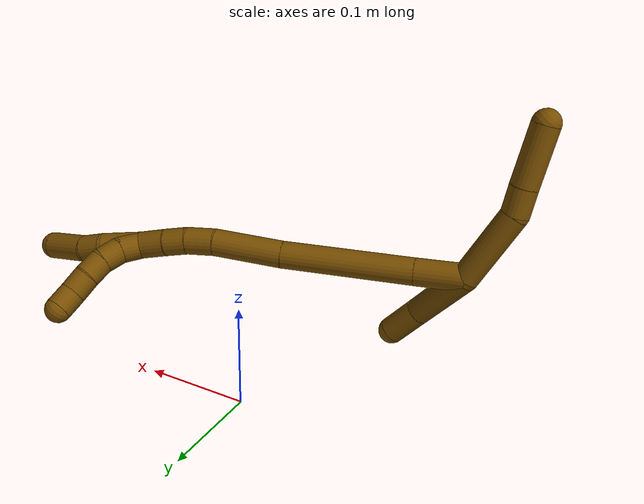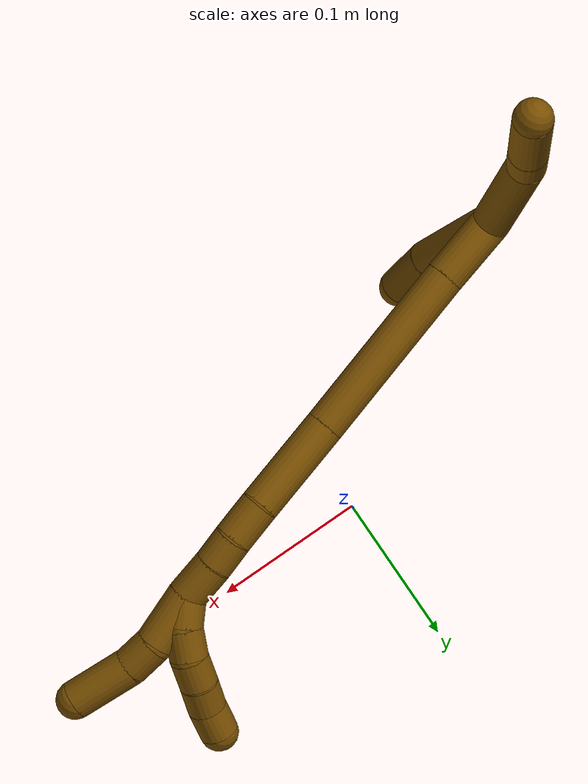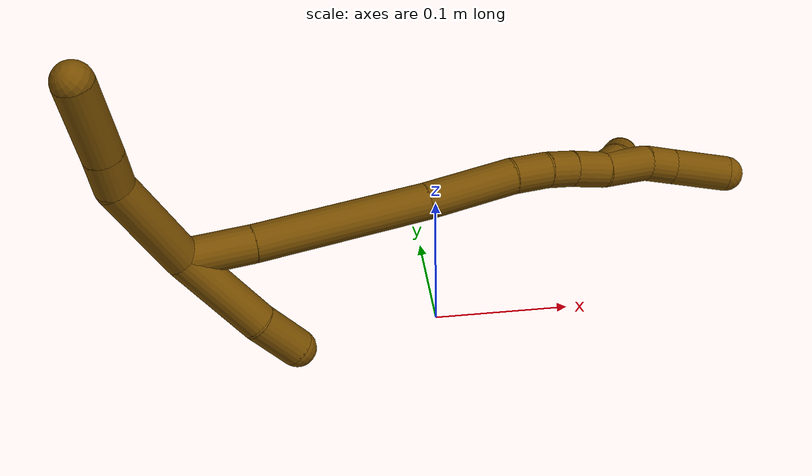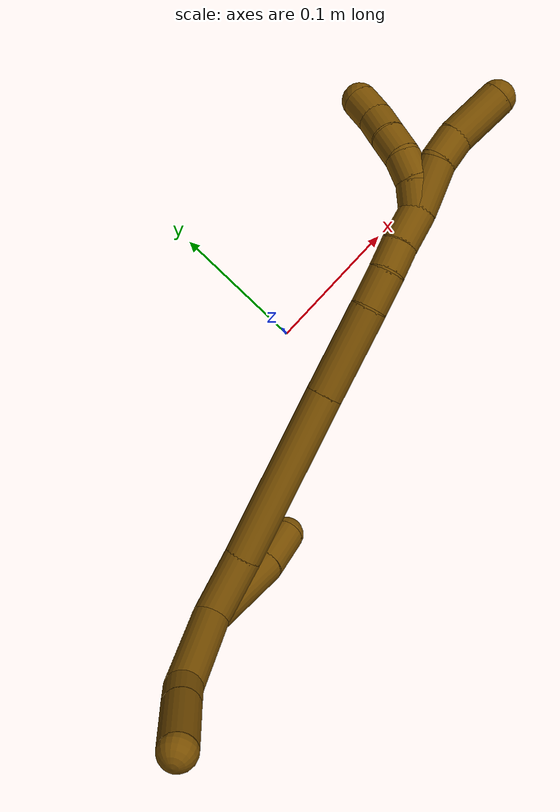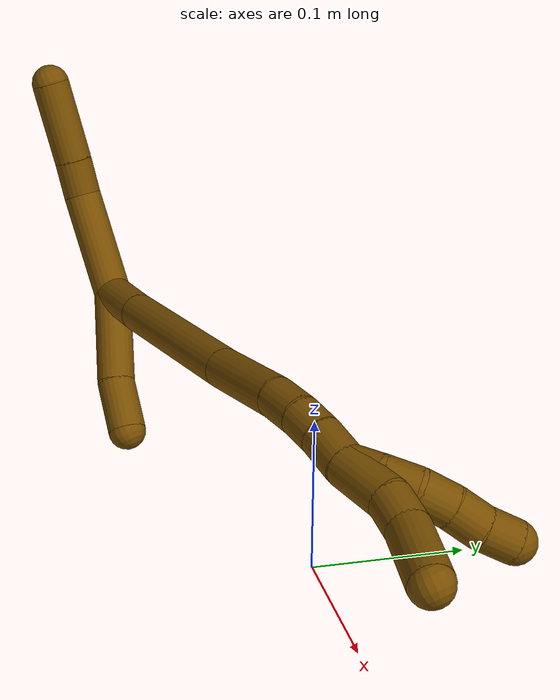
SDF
<sdf version="1.7">
 <world name="default">
  <model name="12">
   <static>0</static>
   <link name="12">
    <collision name="collision-cylinder-e_1_2_8">
     <pose>0.004573 0.002542 0.035134 -0.072219 0.129101 -0.00467</pose>
     <geometry><cylinder><radius>0.0125</radius><length>0.071043</length></cylinder></geometry>
     <surface>
      <friction><ode><mu>1.16</mu><mu2>1.16</mu2><slip1>0</slip1><slip2>0</slip2></ode></friction>
      <contact><ode><kp>1e+06</kp><kd>1</kd><max_vel>0</max_vel><min_depth>0.001</min_depth></ode></contact>
     </surface>
    </collision>
    <visual name="visual-cylinder-e_1_2_8">
     <pose>0.004573 0.002542 0.035134 -0.072219 0.129101 -0.00467</pose>
     <geometry><cylinder><radius>0.0125</radius><length>0.071043</length></cylinder></geometry>
     <material><ambient>0.466667 0.301961 0 1</ambient></material>
    </visual>
    <collision name="collision-cylinder-e_2_8_9">
     <pose>0.014802 0.005196 0.08144 -0.010023 0.468576 -0.002392</pose>
     <geometry><cylinder><radius>0.0125</radius><length>0.025045</length></cylinder></geometry>
     <surface>
      <friction><ode><mu>1.16</mu><mu2>1.16</mu2><slip1>0</slip1><slip2>0</slip2></ode></friction>
      <contact><ode><kp>1e+06</kp><kd>1</kd><max_vel>0</max_vel><min_depth>0.001</min_depth></ode></contact>
     </surface>
    </collision>
    <visual name="visual-cylinder-e_2_8_9">
     <pose>0.014802 0.005196 0.08144 -0.010023 0.468576 -0.002392</pose>
     <geometry><cylinder><radius>0.0125</radius><length>0.025045</length></cylinder></geometry>
     <material><ambient>0.466667 0.301961 0 1</ambient></material>
    </visual>
    <collision name="collision-cylinder-e_3_9_6">
     <pose>0.032022 0.004956 0.116959 0.014458 0.443431 0.003259</pose>
     <geometry><cylinder><radius>0.0125</radius><length>0.053912</length></cylinder></geometry>
     <surface>
      <friction><ode><mu>1.16</mu><mu2>1.16</mu2><slip1>0</slip1><slip2>0</slip2></ode></friction>
      <contact><ode><kp>1e+06</kp><kd>1</kd><max_vel>0</max_vel><min_depth>0.001</min_depth></ode></contact>
     </surface>
    </collision>
    <visual name="visual-cylinder-e_3_9_6">
     <pose>0.032022 0.004956 0.116959 0.014458 0.443431 0.003259</pose>
     <geometry><cylinder><radius>0.0125</radius><length>0.053912</length></cylinder></geometry>
     <material><ambient>0.466667 0.301961 0 1</ambient></material>
    </visual>
    <collision name="collision-cylinder-e_1_2_10">
     <pose>0.0022 -0.012146 -0.030179 2.75895 0.067535 0.345338</pose>
     <geometry><cylinder><radius>0.0125</radius><length>0.065212</length></cylinder></geometry>
     <surface>
      <friction><ode><mu>1.16</mu><mu2>1.16</mu2><slip1>0</slip1><slip2>0</slip2></ode></friction>
      <contact><ode><kp>1e+06</kp><kd>1</kd><max_vel>0</max_vel><min_depth>0.001</min_depth></ode></contact>
     </surface>
    </collision>
    <visual name="visual-cylinder-e_1_2_10">
     <pose>0.0022 -0.012146 -0.030179 2.75895 0.067535 0.345338</pose>
     <geometry><cylinder><radius>0.0125</radius><length>0.065212</length></cylinder></geometry>
     <material><ambient>0.466667 0.301961 0 1</ambient></material>
    </visual>
    <collision name="collision-cylinder-e_2_10_5">
     <pose>0.006265 -0.027952 -0.077261 2.9284 0.107372 0.930834</pose>
     <geometry><cylinder><radius>0.0125</radius><length>0.034788</length></cylinder></geometry>
     <surface>
      <friction><ode><mu>1.16</mu><mu2>1.16</mu2><slip1>0</slip1><slip2>0</slip2></ode></friction>
      <contact><ode><kp>1e+06</kp><kd>1</kd><max_vel>0</max_vel><min_depth>0.001</min_depth></ode></contact>
     </surface>
    </collision>
    <visual name="visual-cylinder-e_2_10_5">
     <pose>0.006265 -0.027952 -0.077261 2.9284 0.107372 0.930834</pose>
     <geometry><cylinder><radius>0.0125</radius><length>0.034788</length></cylinder></geometry>
     <material><ambient>0.466667 0.301961 0 1</ambient></material>
    </visual>
    <collision name="collision-cylinder-e_1_2_11">
     <pose>0.017527 -8.4e-05 -0.013433 3.13536 0.916865 3.12896</pose>
     <geometry><cylinder><radius>0.0125</radius><length>0.044165</length></cylinder></geometry>
     <surface>
      <friction><ode><mu>1.16</mu><mu2>1.16</mu2><slip1>0</slip1><slip2>0</slip2></ode></friction>
      <contact><ode><kp>1e+06</kp><kd>1</kd><max_vel>0</max_vel><min_depth>0.001</min_depth></ode></contact>
     </surface>
    </collision>
    <visual name="visual-cylinder-e_1_2_11">
     <pose>0.017527 -8.4e-05 -0.013433 3.13536 0.916865 3.12896</pose>
     <geometry><cylinder><radius>0.0125</radius><length>0.044165</length></cylinder></geometry>
     <material><ambient>0.466667 0.301961 0 1</ambient></material>
    </visual>
    <collision name="collision-cylinder-e_2_11_12">
     <pose>0.083003 0.001375 -0.061975 -3.0977 0.938308 -3.05505</pose>
     <geometry><cylinder><radius>0.0125</radius><length>0.1189</length></cylinder></geometry>
     <surface>
      <friction><ode><mu>1.16</mu><mu2>1.16</mu2><slip1>0</slip1><slip2>0</slip2></ode></friction>
      <contact><ode><kp>1e+06</kp><kd>1</kd><max_vel>0</max_vel><min_depth>0.001</min_depth></ode></contact>
     </surface>
    </collision>
    <visual name="visual-cylinder-e_2_11_12">
     <pose>0.083003 0.001375 -0.061975 -3.0977 0.938308 -3.05505</pose>
     <geometry><cylinder><radius>0.0125</radius><length>0.1189</length></cylinder></geometry>
     <material><ambient>0.466667 0.301961 0 1</ambient></material>
    </visual>
    <collision name="collision-cylinder-e_3_12_13">
     <pose>0.157521 0.003796 -0.114364 -3.09075 0.993588 -3.04785</pose>
     <geometry><cylinder><radius>0.0125</radius><length>0.063408</length></cylinder></geometry>
     <surface>
      <friction><ode><mu>1.16</mu><mu2>1.16</mu2><slip1>0</slip1><slip2>0</slip2></ode></friction>
      <contact><ode><kp>1e+06</kp><kd>1</kd><max_vel>0</max_vel><min_depth>0.001</min_depth></ode></contact>
     </surface>
    </collision>
    <visual name="visual-cylinder-e_3_12_13">
     <pose>0.157521 0.003796 -0.114364 -3.09075 0.993588 -3.04785</pose>
     <geometry><cylinder><radius>0.0125</radius><length>0.063408</length></cylinder></geometry>
     <material><ambient>0.466667 0.301961 0 1</ambient></material>
    </visual>
    <collision name="collision-cylinder-e_4_13_14">
     <pose>0.194107 0.004913 -0.140151 -3.11361 0.86649 -3.0811</pose>
     <geometry><cylinder><radius>0.0125</radius><length>0.026294</length></cylinder></geometry>
     <surface>
      <friction><ode><mu>1.16</mu><mu2>1.16</mu2><slip1>0</slip1><slip2>0</slip2></ode></friction>
      <contact><ode><kp>1e+06</kp><kd>1</kd><max_vel>0</max_vel><min_depth>0.001</min_depth></ode></contact>
     </surface>
    </collision>
    <visual name="visual-cylinder-e_4_13_14">
     <pose>0.194107 0.004913 -0.140151 -3.11361 0.86649 -3.0811</pose>
     <geometry><cylinder><radius>0.0125</radius><length>0.026294</length></cylinder></geometry>
     <material><ambient>0.466667 0.301961 0 1</ambient></material>
    </visual>
    <collision name="collision-cylinder-e_5_14_15">
     <pose>0.211042 0.005372 -0.156452 -3.11329 0.725827 -3.0671</pose>
     <geometry><cylinder><radius>0.0125</radius><length>0.020842</length></cylinder></geometry>
     <surface>
      <friction><ode><mu>1.16</mu><mu2>1.16</mu2><slip1>0</slip1><slip2>0</slip2></ode></friction>
      <contact><ode><kp>1e+06</kp><kd>1</kd><max_vel>0</max_vel><min_depth>0.001</min_depth></ode></contact>
     </surface>
    </collision>
    <visual name="visual-cylinder-e_5_14_15">
     <pose>0.211042 0.005372 -0.156452 -3.11329 0.725827 -3.0671</pose>
     <geometry><cylinder><radius>0.0125</radius><length>0.020842</length></cylinder></geometry>
     <material><ambient>0.466667 0.301961 0 1</ambient></material>
    </visual>
    <collision name="collision-cylinder-e_6_15_1">
     <pose>0.226338 0.004924 -0.174415 3.07601 0.687966 2.95896</pose>
     <geometry><cylinder><radius>0.0125</radius><length>0.026392</length></cylinder></geometry>
     <surface>
      <friction><ode><mu>1.16</mu><mu2>1.16</mu2><slip1>0</slip1><slip2>0</slip2></ode></friction>
      <contact><ode><kp>1e+06</kp><kd>1</kd><max_vel>0</max_vel><min_depth>0.001</min_depth></ode></contact>
     </surface>
    </collision>
    <visual name="visual-cylinder-e_6_15_1">
     <pose>0.226338 0.004924 -0.174415 3.07601 0.687966 2.95896</pose>
     <geometry><cylinder><radius>0.0125</radius><length>0.026392</length></cylinder></geometry>
     <material><ambient>0.466667 0.301961 0 1</ambient></material>
    </visual>
    <collision name="collision-cylinder-e_1_1_16">
     <pose>0.247638 0.005743 -0.197408 -3.02615 0.785973 -2.86459</pose>
     <geometry><cylinder><radius>0.0125</radius><length>0.036524</length></cylinder></geometry>
     <surface>
      <friction><ode><mu>1.16</mu><mu2>1.16</mu2><slip1>0</slip1><slip2>0</slip2></ode></friction>
      <contact><ode><kp>1e+06</kp><kd>1</kd><max_vel>0</max_vel><min_depth>0.001</min_depth></ode></contact>
     </surface>
    </collision>
    <visual name="visual-cylinder-e_1_1_16">
     <pose>0.247638 0.005743 -0.197408 -3.02615 0.785973 -2.86459</pose>
     <geometry><cylinder><radius>0.0125</radius><length>0.036524</length></cylinder></geometry>
     <material><ambient>0.466667 0.301961 0 1</ambient></material>
    </visual>
    <collision name="collision-cylinder-e_2_16_17">
     <pose>0.267216 0.005496 -0.21879 2.94186 0.651145 2.56454</pose>
     <geometry><cylinder><radius>0.0125</radius><length>0.021968</length></cylinder></geometry>
     <surface>
      <friction><ode><mu>1.16</mu><mu2>1.16</mu2><slip1>0</slip1><slip2>0</slip2></ode></friction>
      <contact><ode><kp>1e+06</kp><kd>1</kd><max_vel>0</max_vel><min_depth>0.001</min_depth></ode></contact>
     </surface>
    </collision>
    <visual name="visual-cylinder-e_2_16_17">
     <pose>0.267216 0.005496 -0.21879 2.94186 0.651145 2.56454</pose>
     <geometry><cylinder><radius>0.0125</radius><length>0.021968</length></cylinder></geometry>
     <material><ambient>0.466667 0.301961 0 1</ambient></material>
    </visual>
    <collision name="collision-cylinder-e_3_17_4">
     <pose>0.287717 -0.003086 -0.241216 2.68273 0.730223 2.0447</pose>
     <geometry><cylinder><radius>0.0125</radius><length>0.041509</length></cylinder></geometry>
     <surface>
      <friction><ode><mu>1.16</mu><mu2>1.16</mu2><slip1>0</slip1><slip2>0</slip2></ode></friction>
      <contact><ode><kp>1e+06</kp><kd>1</kd><max_vel>0</max_vel><min_depth>0.001</min_depth></ode></contact>
     </surface>
    </collision>
    <visual name="visual-cylinder-e_3_17_4">
     <pose>0.287717 -0.003086 -0.241216 2.68273 0.730223 2.0447</pose>
     <geometry><cylinder><radius>0.0125</radius><length>0.041509</length></cylinder></geometry>
     <material><ambient>0.466667 0.301961 0 1</ambient></material>
    </visual>
    <collision name="collision-cylinder-e_1_1_18">
     <pose>0.240185 0.009542 -0.191082 -2.45839 0.578418 -1.39369</pose>
     <geometry><cylinder><radius>0.0125</radius><length>0.02</length></cylinder></geometry>
     <surface>
      <friction><ode><mu>1.16</mu><mu2>1.16</mu2><slip1>0</slip1><slip2>0</slip2></ode></friction>
      <contact><ode><kp>1e+06</kp><kd>1</kd><max_vel>0</max_vel><min_depth>0.001</min_depth></ode></contact>
     </surface>
    </collision>
    <visual name="visual-cylinder-e_1_1_18">
     <pose>0.240185 0.009542 -0.191082 -2.45839 0.578418 -1.39369</pose>
     <geometry><cylinder><radius>0.0125</radius><length>0.02</length></cylinder></geometry>
     <material><ambient>0.466667 0.301961 0 1</ambient></material>
    </visual>
    <collision name="collision-cylinder-e_2_18_19">
     <pose>0.248184 0.021648 -0.204437 -2.35915 0.256062 -0.605036</pose>
     <geometry><cylinder><radius>0.0125</radius><length>0.02</length></cylinder></geometry>
     <surface>
      <friction><ode><mu>1.16</mu><mu2>1.16</mu2><slip1>0</slip1><slip2>0</slip2></ode></friction>
      <contact><ode><kp>1e+06</kp><kd>1</kd><max_vel>0</max_vel><min_depth>0.001</min_depth></ode></contact>
     </surface>
    </collision>
    <visual name="visual-cylinder-e_2_18_19">
     <pose>0.248184 0.021648 -0.204437 -2.35915 0.256062 -0.605036</pose>
     <geometry><cylinder><radius>0.0125</radius><length>0.02</length></cylinder></geometry>
     <material><ambient>0.466667 0.301961 0 1</ambient></material>
    </visual>
    <collision name="collision-cylinder-e_3_19_20">
     <pose>0.250765 0.035149 -0.218738 -2.41002 0.004808 -0.012552</pose>
     <geometry><cylinder><radius>0.0125</radius><length>0.02</length></cylinder></geometry>
     <surface>
      <friction><ode><mu>1.16</mu><mu2>1.16</mu2><slip1>0</slip1><slip2>0</slip2></ode></friction>
      <contact><ode><kp>1e+06</kp><kd>1</kd><max_vel>0</max_vel><min_depth>0.001</min_depth></ode></contact>
     </surface>
    </collision>
    <visual name="visual-cylinder-e_3_19_20">
     <pose>0.250765 0.035149 -0.218738 -2.41002 0.004808 -0.012552</pose>
     <geometry><cylinder><radius>0.0125</radius><length>0.02</length></cylinder></geometry>
     <material><ambient>0.466667 0.301961 0 1</ambient></material>
    </visual>
    <collision name="collision-cylinder-e_4_20_21">
     <pose>0.250243 0.047647 -0.234293 -2.51954 -0.057036 0.177014</pose>
     <geometry><cylinder><radius>0.0125</radius><length>0.02</length></cylinder></geometry>
     <surface>
      <friction><ode><mu>1.16</mu><mu2>1.16</mu2><slip1>0</slip1><slip2>0</slip2></ode></friction>
      <contact><ode><kp>1e+06</kp><kd>1</kd><max_vel>0</max_vel><min_depth>0.001</min_depth></ode></contact>
     </surface>
    </collision>
    <visual name="visual-cylinder-e_4_20_21">
     <pose>0.250243 0.047647 -0.234293 -2.51954 -0.057036 0.177014</pose>
     <geometry><cylinder><radius>0.0125</radius><length>0.02</length></cylinder></geometry>
     <material><ambient>0.466667 0.301961 0 1</ambient></material>
    </visual>
    <collision name="collision-cylinder-e_5_21_3">
     <pose>0.249182 0.060656 -0.249338 -2.33771 -0.049136 0.115487</pose>
     <geometry><cylinder><radius>0.0125</radius><length>0.02</length></cylinder></geometry>
     <surface>
      <friction><ode><mu>1.16</mu><mu2>1.16</mu2><slip1>0</slip1><slip2>0</slip2></ode></friction>
      <contact><ode><kp>1e+06</kp><kd>1</kd><max_vel>0</max_vel><min_depth>0.001</min_depth></ode></contact>
     </surface>
    </collision>
    <visual name="visual-cylinder-e_5_21_3">
     <pose>0.249182 0.060656 -0.249338 -2.33771 -0.049136 0.115487</pose>
     <geometry><cylinder><radius>0.0125</radius><length>0.02</length></cylinder></geometry>
     <material><ambient>0.466667 0.301961 0 1</ambient></material>
    </visual>
    <collision name="collision-sphere-3">
     <pose>0.248691 0.067848 -0.256269 0 -0 0</pose>
     <geometry><sphere><radius>0.0125</radius></sphere></geometry>
     <surface>
      <friction><ode><mu>1.16</mu><mu2>1.16</mu2><slip1>0</slip1><slip2>0</slip2></ode></friction>
      <contact><ode><kp>1e+06</kp><kd>1</kd><max_vel>0</max_vel><min_depth>0.001</min_depth></ode></contact>
     </surface>
    </collision>
    <visual name="visual-sphere-3">
     <pose>0.248691 0.067848 -0.256269 0 -0 0</pose>
     <geometry><sphere><radius>0.0125</radius></sphere></geometry>
     <material><ambient>0.466667 0.301961 0 1</ambient></material>
    </visual>
    <collision name="collision-sphere-21">
     <pose>0.249673 0.053464 -0.242407 0 -0 0</pose>
     <geometry><sphere><radius>0.0125</radius></sphere></geometry>
     <surface>
      <friction><ode><mu>1.16</mu><mu2>1.16</mu2><slip1>0</slip1><slip2>0</slip2></ode></friction>
      <contact><ode><kp>1e+06</kp><kd>1</kd><max_vel>0</max_vel><min_depth>0.001</min_depth></ode></contact>
     </surface>
    </collision>
    <visual name="visual-sphere-21">
     <pose>0.249673 0.053464 -0.242407 0 -0 0</pose>
     <geometry><sphere><radius>0.0125</radius></sphere></geometry>
     <material><ambient>0.466667 0.301961 0 1</ambient></material>
    </visual>
    <collision name="collision-sphere-20">
     <pose>0.250813 0.041829 -0.22618 0 -0 0</pose>
     <geometry><sphere><radius>0.0125</radius></sphere></geometry>
     <surface>
      <friction><ode><mu>1.16</mu><mu2>1.16</mu2><slip1>0</slip1><slip2>0</slip2></ode></friction>
      <contact><ode><kp>1e+06</kp><kd>1</kd><max_vel>0</max_vel><min_depth>0.001</min_depth></ode></contact>
     </surface>
    </collision>
    <visual name="visual-sphere-20">
     <pose>0.250813 0.041829 -0.22618 0 -0 0</pose>
     <geometry><sphere><radius>0.0125</radius></sphere></geometry>
     <material><ambient>0.466667 0.301961 0 1</ambient></material>
    </visual>
    <collision name="collision-sphere-19">
     <pose>0.250717 0.028469 -0.211297 0 -0 0</pose>
     <geometry><sphere><radius>0.0125</radius></sphere></geometry>
     <surface>
      <friction><ode><mu>1.16</mu><mu2>1.16</mu2><slip1>0</slip1><slip2>0</slip2></ode></friction>
      <contact><ode><kp>1e+06</kp><kd>1</kd><max_vel>0</max_vel><min_depth>0.001</min_depth></ode></contact>
     </surface>
    </collision>
    <visual name="visual-sphere-19">
     <pose>0.250717 0.028469 -0.211297 0 -0 0</pose>
     <geometry><sphere><radius>0.0125</radius></sphere></geometry>
     <material><ambient>0.466667 0.301961 0 1</ambient></material>
    </visual>
    <collision name="collision-sphere-5">
     <pose>0.008129 -0.031611 -0.094163 0 -0 0</pose>
     <geometry><sphere><radius>0.0125</radius></sphere></geometry>
     <surface>
      <friction><ode><mu>1.16</mu><mu2>1.16</mu2><slip1>0</slip1><slip2>0</slip2></ode></friction>
      <contact><ode><kp>1e+06</kp><kd>1</kd><max_vel>0</max_vel><min_depth>0.001</min_depth></ode></contact>
     </surface>
    </collision>
    <visual name="visual-sphere-5">
     <pose>0.008129 -0.031611 -0.094163 0 -0 0</pose>
     <geometry><sphere><radius>0.0125</radius></sphere></geometry>
     <material><ambient>0.466667 0.301961 0 1</ambient></material>
    </visual>
    <collision name="collision-sphere-10">
     <pose>0.004401 -0.024293 -0.060358 0 -0 0</pose>
     <geometry><sphere><radius>0.0125</radius></sphere></geometry>
     <surface>
      <friction><ode><mu>1.16</mu><mu2>1.16</mu2><slip1>0</slip1><slip2>0</slip2></ode></friction>
      <contact><ode><kp>1e+06</kp><kd>1</kd><max_vel>0</max_vel><min_depth>0.001</min_depth></ode></contact>
     </surface>
    </collision>
    <visual name="visual-sphere-10">
     <pose>0.004401 -0.024293 -0.060358 0 -0 0</pose>
     <geometry><sphere><radius>0.0125</radius></sphere></geometry>
     <material><ambient>0.466667 0.301961 0 1</ambient></material>
    </visual>
    <collision name="collision-sphere-6">
     <pose>0.043587 0.004603 0.141305 0 -0 0</pose>
     <geometry><sphere><radius>0.0125</radius></sphere></geometry>
     <surface>
      <friction><ode><mu>1.16</mu><mu2>1.16</mu2><slip1>0</slip1><slip2>0</slip2></ode></friction>
      <contact><ode><kp>1e+06</kp><kd>1</kd><max_vel>0</max_vel><min_depth>0.001</min_depth></ode></contact>
     </surface>
    </collision>
    <visual name="visual-sphere-6">
     <pose>0.043587 0.004603 0.141305 0 -0 0</pose>
     <geometry><sphere><radius>0.0125</radius></sphere></geometry>
     <material><ambient>0.466667 0.301961 0 1</ambient></material>
    </visual>
    <collision name="collision-sphere-9">
     <pose>0.020457 0.005308 0.092612 0 -0 0</pose>
     <geometry><sphere><radius>0.0125</radius></sphere></geometry>
     <surface>
      <friction><ode><mu>1.16</mu><mu2>1.16</mu2><slip1>0</slip1><slip2>0</slip2></ode></friction>
      <contact><ode><kp>1e+06</kp><kd>1</kd><max_vel>0</max_vel><min_depth>0.001</min_depth></ode></contact>
     </surface>
    </collision>
    <visual name="visual-sphere-9">
     <pose>0.020457 0.005308 0.092612 0 -0 0</pose>
     <geometry><sphere><radius>0.0125</radius></sphere></geometry>
     <material><ambient>0.466667 0.301961 0 1</ambient></material>
    </visual>
    <collision name="collision-sphere-2">
     <geometry><sphere><radius>0.0125</radius></sphere></geometry>
     <surface>
      <friction><ode><mu>1.16</mu><mu2>1.16</mu2><slip1>0</slip1><slip2>0</slip2></ode></friction>
      <contact><ode><kp>1e+06</kp><kd>1</kd><max_vel>0</max_vel><min_depth>0.001</min_depth></ode></contact>
     </surface>
    </collision>
    <visual name="visual-sphere-2">
     <geometry><sphere><radius>0.0125</radius></sphere></geometry>
     <material><ambient>0.466667 0.301961 0 1</ambient></material>
    </visual>
    <collision name="collision-sphere-8">
     <pose>0.009146 0.005084 0.070268 0 -0 0</pose>
     <geometry><sphere><radius>0.0125</radius></sphere></geometry>
     <surface>
      <friction><ode><mu>1.16</mu><mu2>1.16</mu2><slip1>0</slip1><slip2>0</slip2></ode></friction>
      <contact><ode><kp>1e+06</kp><kd>1</kd><max_vel>0</max_vel><min_depth>0.001</min_depth></ode></contact>
     </surface>
    </collision>
    <visual name="visual-sphere-8">
     <pose>0.009146 0.005084 0.070268 0 -0 0</pose>
     <geometry><sphere><radius>0.0125</radius></sphere></geometry>
     <material><ambient>0.466667 0.301961 0 1</ambient></material>
    </visual>
    <collision name="collision-sphere-11">
     <pose>0.035053 -0.000167 -0.026865 0 -0 0</pose>
     <geometry><sphere><radius>0.0125</radius></sphere></geometry>
     <surface>
      <friction><ode><mu>1.16</mu><mu2>1.16</mu2><slip1>0</slip1><slip2>0</slip2></ode></friction>
      <contact><ode><kp>1e+06</kp><kd>1</kd><max_vel>0</max_vel><min_depth>0.001</min_depth></ode></contact>
     </surface>
    </collision>
    <visual name="visual-sphere-11">
     <pose>0.035053 -0.000167 -0.026865 0 -0 0</pose>
     <geometry><sphere><radius>0.0125</radius></sphere></geometry>
     <material><ambient>0.466667 0.301961 0 1</ambient></material>
    </visual>
    <collision name="collision-sphere-12">
     <pose>0.130953 0.002917 -0.097086 0 -0 0</pose>
     <geometry><sphere><radius>0.0125</radius></sphere></geometry>
     <surface>
      <friction><ode><mu>1.16</mu><mu2>1.16</mu2><slip1>0</slip1><slip2>0</slip2></ode></friction>
      <contact><ode><kp>1e+06</kp><kd>1</kd><max_vel>0</max_vel><min_depth>0.001</min_depth></ode></contact>
     </surface>
    </collision>
    <visual name="visual-sphere-12">
     <pose>0.130953 0.002917 -0.097086 0 -0 0</pose>
     <geometry><sphere><radius>0.0125</radius></sphere></geometry>
     <material><ambient>0.466667 0.301961 0 1</ambient></material>
    </visual>
    <collision name="collision-sphere-13">
     <pose>0.184088 0.004675 -0.131642 0 -0 0</pose>
     <geometry><sphere><radius>0.0125</radius></sphere></geometry>
     <surface>
      <friction><ode><mu>1.16</mu><mu2>1.16</mu2><slip1>0</slip1><slip2>0</slip2></ode></friction>
      <contact><ode><kp>1e+06</kp><kd>1</kd><max_vel>0</max_vel><min_depth>0.001</min_depth></ode></contact>
     </surface>
    </collision>
    <visual name="visual-sphere-13">
     <pose>0.184088 0.004675 -0.131642 0 -0 0</pose>
     <geometry><sphere><radius>0.0125</radius></sphere></geometry>
     <material><ambient>0.466667 0.301961 0 1</ambient></material>
    </visual>
    <collision name="collision-sphere-14">
     <pose>0.204126 0.005152 -0.14866 0 -0 0</pose>
     <geometry><sphere><radius>0.0125</radius></sphere></geometry>
     <surface>
      <friction><ode><mu>1.16</mu><mu2>1.16</mu2><slip1>0</slip1><slip2>0</slip2></ode></friction>
      <contact><ode><kp>1e+06</kp><kd>1</kd><max_vel>0</max_vel><min_depth>0.001</min_depth></ode></contact>
     </surface>
    </collision>
    <visual name="visual-sphere-14">
     <pose>0.204126 0.005152 -0.14866 0 -0 0</pose>
     <geometry><sphere><radius>0.0125</radius></sphere></geometry>
     <material><ambient>0.466667 0.301961 0 1</ambient></material>
    </visual>
    <collision name="collision-sphere-15">
     <pose>0.217959 0.005593 -0.164243 0 -0 0</pose>
     <geometry><sphere><radius>0.0125</radius></sphere></geometry>
     <surface>
      <friction><ode><mu>1.16</mu><mu2>1.16</mu2><slip1>0</slip1><slip2>0</slip2></ode></friction>
      <contact><ode><kp>1e+06</kp><kd>1</kd><max_vel>0</max_vel><min_depth>0.001</min_depth></ode></contact>
     </surface>
    </collision>
    <visual name="visual-sphere-15">
     <pose>0.217959 0.005593 -0.164243 0 -0 0</pose>
     <geometry><sphere><radius>0.0125</radius></sphere></geometry>
     <material><ambient>0.466667 0.301961 0 1</ambient></material>
    </visual>
    <collision name="collision-sphere-1">
     <pose>0.234718 0.004256 -0.184588 0 -0 0</pose>
     <geometry><sphere><radius>0.0125</radius></sphere></geometry>
     <surface>
      <friction><ode><mu>1.16</mu><mu2>1.16</mu2><slip1>0</slip1><slip2>0</slip2></ode></friction>
      <contact><ode><kp>1e+06</kp><kd>1</kd><max_vel>0</max_vel><min_depth>0.001</min_depth></ode></contact>
     </surface>
    </collision>
    <visual name="visual-sphere-1">
     <pose>0.234718 0.004256 -0.184588 0 -0 0</pose>
     <geometry><sphere><radius>0.0125</radius></sphere></geometry>
     <material><ambient>0.466667 0.301961 0 1</ambient></material>
    </visual>
    <collision name="collision-sphere-18">
     <pose>0.245652 0.014828 -0.197576 0 -0 0</pose>
     <geometry><sphere><radius>0.0125</radius></sphere></geometry>
     <surface>
      <friction><ode><mu>1.16</mu><mu2>1.16</mu2><slip1>0</slip1><slip2>0</slip2></ode></friction>
      <contact><ode><kp>1e+06</kp><kd>1</kd><max_vel>0</max_vel><min_depth>0.001</min_depth></ode></contact>
     </surface>
    </collision>
    <visual name="visual-sphere-18">
     <pose>0.245652 0.014828 -0.197576 0 -0 0</pose>
     <geometry><sphere><radius>0.0125</radius></sphere></geometry>
     <material><ambient>0.466667 0.301961 0 1</ambient></material>
    </visual>
    <collision name="collision-sphere-16">
     <pose>0.260559 0.00723 -0.210228 0 -0 0</pose>
     <geometry><sphere><radius>0.0125</radius></sphere></geometry>
     <surface>
      <friction><ode><mu>1.16</mu><mu2>1.16</mu2><slip1>0</slip1><slip2>0</slip2></ode></friction>
      <contact><ode><kp>1e+06</kp><kd>1</kd><max_vel>0</max_vel><min_depth>0.001</min_depth></ode></contact>
     </surface>
    </collision>
    <visual name="visual-sphere-16">
     <pose>0.260559 0.00723 -0.210228 0 -0 0</pose>
     <geometry><sphere><radius>0.0125</radius></sphere></geometry>
     <material><ambient>0.466667 0.301961 0 1</ambient></material>
    </visual>
    <collision name="collision-sphere-17">
     <pose>0.273873 0.003763 -0.227353 0 -0 0</pose>
     <geometry><sphere><radius>0.0125</radius></sphere></geometry>
     <surface>
      <friction><ode><mu>1.16</mu><mu2>1.16</mu2><slip1>0</slip1><slip2>0</slip2></ode></friction>
      <contact><ode><kp>1e+06</kp><kd>1</kd><max_vel>0</max_vel><min_depth>0.001</min_depth></ode></contact>
     </surface>
    </collision>
    <visual name="visual-sphere-17">
     <pose>0.273873 0.003763 -0.227353 0 -0 0</pose>
     <geometry><sphere><radius>0.0125</radius></sphere></geometry>
     <material><ambient>0.466667 0.301961 0 1</ambient></material>
    </visual>
    <collision name="collision-sphere-4">
     <pose>0.301561 -0.009935 -0.255079 0 -0 0</pose>
     <geometry><sphere><radius>0.0125</radius></sphere></geometry>
     <surface>
      <friction><ode><mu>1.16</mu><mu2>1.16</mu2><slip1>0</slip1><slip2>0</slip2></ode></friction>
      <contact><ode><kp>1e+06</kp><kd>1</kd><max_vel>0</max_vel><min_depth>0.001</min_depth></ode></contact>
     </surface>
    </collision>
    <visual name="visual-sphere-4">
     <pose>0.301561 -0.009935 -0.255079 0 -0 0</pose>
     <geometry><sphere><radius>0.0125</radius></sphere></geometry>
     <material><ambient>0.466667 0.301961 0 1</ambient></material>
    </visual>
    <inertial>
     <pose>0.120692 0.004374 -0.086085 0 -0 0</pose>
     <mass>0.75</mass>
     <inertia><ixx>1e-06</ixx><ixy>0</ixy><ixz>0</ixz><iyy>0.000226</iyy><iyz>0</iyz><izz>-0.000193</izz></inertia>
    </inertial>
   </link>
   <pose>-0.169861 -0.098479 0.133376 0.214863 -0.630663 0.13797</pose>
  </model>
 </world>
</sdf>
